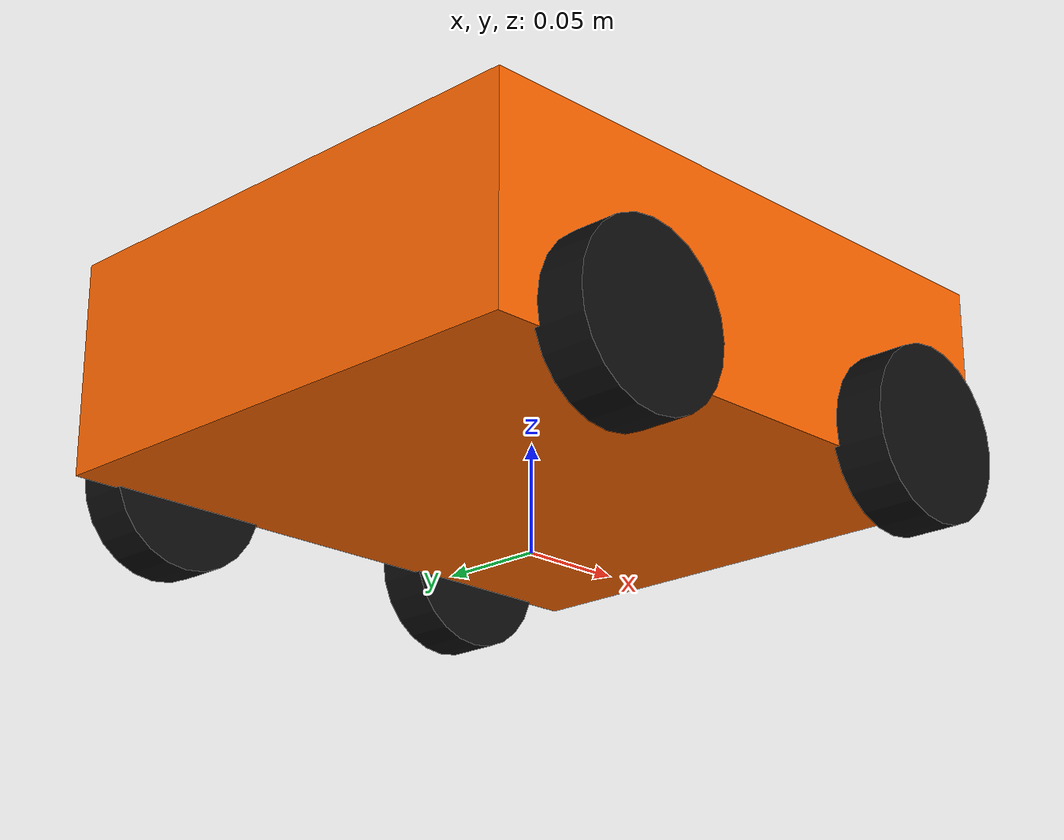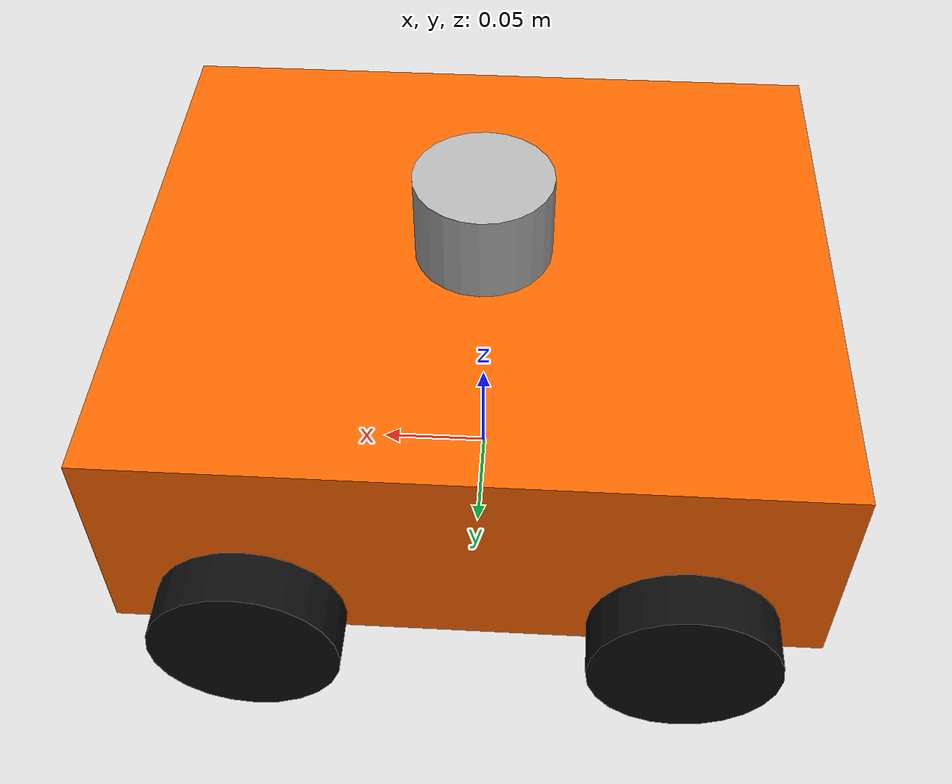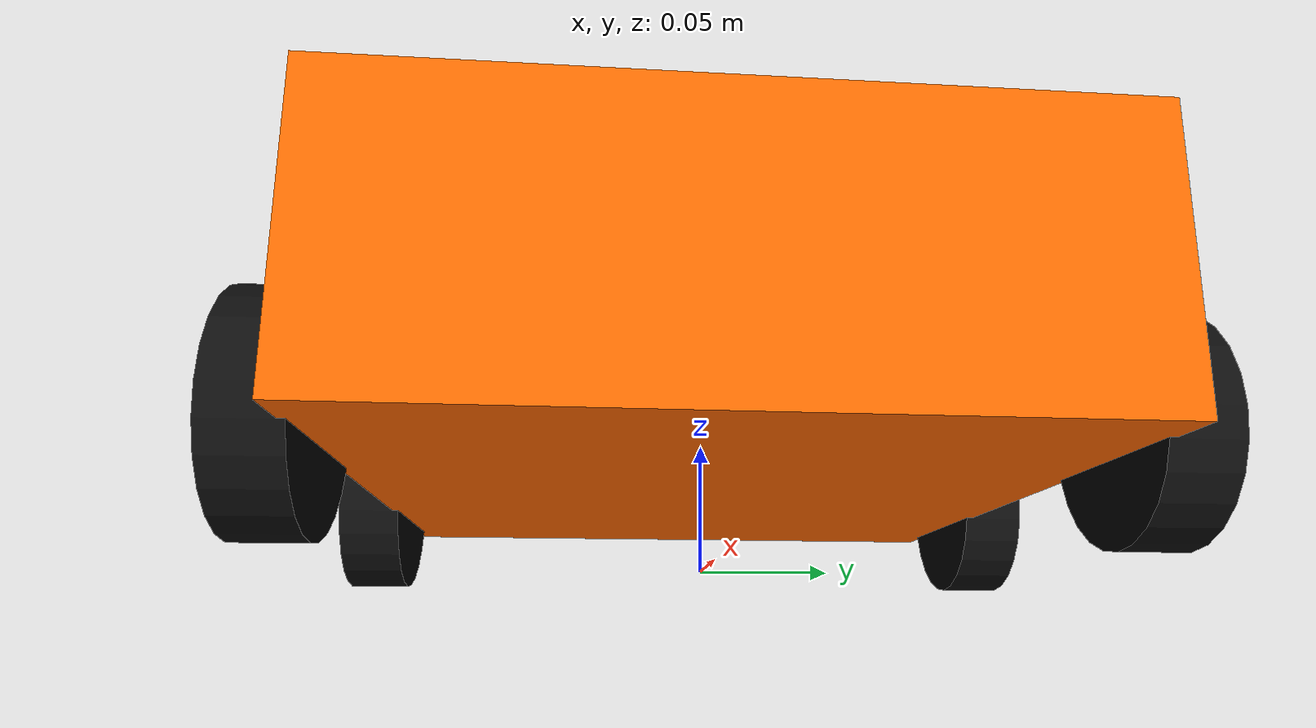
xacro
<?xml version="1.0"?>
<robot name="diff_robot" xmlns:xacro="http://www.ros.org/wiki/xacro">

  <xacro:property name="body_length" value="0.30"/>
  <xacro:property name="body_width"  value="0.26"/>
  <xacro:property name="body_height" value="0.10"/>
  <xacro:property name="base_z"      value="0.08"/>

  <xacro:property name="wheel_radius" value="0.04"/>
  <xacro:property name="wheel_width"  value="0.025"/>
  <xacro:property name="wheel_x"      value="0.09"/>
  <xacro:property name="wheel_y"      value="0.14"/>

  <xacro:property name="lidar_radius" value="0.03"/>
  <xacro:property name="lidar_height" value="0.04"/>

  <material name="orange"><color rgba="1.0 0.4 0.0 1.0"/></material>
  <material name="black"><color rgba="0.05 0.05 0.05 1.0"/></material>
  <material name="grey"><color rgba="0.7 0.7 0.7 1.0"/></material>

  <link name="base_footprint"/>

  <joint name="base_joint" type="fixed">
    <parent link="base_footprint"/>
    <child link="base_link"/>
    <origin xyz="0 0 ${base_z}" rpy="0 0 0"/>
  </joint>

  <link name="base_link">
    <visual>
      <geometry>
        <box size="${body_length} ${body_width} ${body_height}"/>
      </geometry>
      <material name="orange"/>
    </visual>
    <collision>
      <geometry>
        <box size="${body_length} ${body_width} ${body_height}"/>
      </geometry>
    </collision>
    <inertial>
      <mass value="2.0"/>
      <inertia
        ixx="${2.0*(body_height*body_height+body_width*body_width)/12.0}" ixy="0.0" ixz="0.0"
        iyy="${2.0*(body_height*body_height+body_length*body_length)/12.0}" iyz="0.0"
        izz="${2.0*(body_length*body_length+body_width*body_width)/12.0}"/>
    </inertial>
  </link>

  <joint name="lidar_joint" type="fixed">
    <parent link="base_link"/>
    <child link="lidar_link"/>
    <origin xyz="0 0 ${body_height/2 + lidar_height/2}" rpy="0 0 0"/>
  </joint>

  <link name="lidar_link">
    <visual>
      <geometry>
        <cylinder radius="${lidar_radius}" length="${lidar_height}"/>
      </geometry>
      <material name="grey"/>
    </visual>
    <collision>
      <geometry>
        <cylinder radius="${lidar_radius}" length="${lidar_height}"/>
      </geometry>
    </collision>
    <inertial>
      <mass value="0.05"/>
      <inertia
        ixx="${0.05*(3*lidar_radius*lidar_radius+lidar_height*lidar_height)/12.0}" ixy="0.0" ixz="0.0"
        iyy="${0.5*0.05*lidar_radius*lidar_radius}" iyz="0.0"
        izz="${0.05*(3*lidar_radius*lidar_radius+lidar_height*lidar_height)/12.0}"/>
    </inertial>
  </link>

  <xacro:macro name="wheel" params="name x y">
    <link name="${name}_link">
      <visual>
        <origin rpy="${pi/2} 0 0"/>
        <geometry>
          <cylinder radius="${wheel_radius}" length="${wheel_width}"/>
        </geometry>
        <material name="black"/>
      </visual>
      <collision>
        <geometry>
          <sphere radius="${wheel_radius}"/>
        </geometry>
      </collision>
      <inertial>
        <mass value="0.1"/>
        <inertia
          ixx="${0.1*(3*wheel_radius*wheel_radius+wheel_width*wheel_width)/12.0}" ixy="0.0" ixz="0.0"
          iyy="${0.5*0.1*wheel_radius*wheel_radius}" iyz="0.0"
          izz="${0.1*(3*wheel_radius*wheel_radius+wheel_width*wheel_width)/12.0}"/>
      </inertial>
    </link>
    <joint name="${name}_joint" type="continuous">
      <parent link="base_link"/>
      <child link="${name}_link"/>
      <origin xyz="${x} ${y} ${wheel_radius - base_z}" rpy="0 0 0"/>
      <axis xyz="0 1 0"/>
      <dynamics damping="0.01" friction="0.0"/>
    </joint>
  </xacro:macro>

  <xacro:wheel name="left_wheel"       x="${wheel_x}"  y="${wheel_y}"/>
  <xacro:wheel name="right_wheel"      x="${wheel_x}"  y="-${wheel_y}"/>
  <xacro:wheel name="left_rear_wheel"  x="-${wheel_x}" y="${wheel_y}"/>
  <xacro:wheel name="right_rear_wheel" x="-${wheel_x}" y="-${wheel_y}"/>

  <gazebo reference="base_link">
    <material>Gazebo/Orange</material>
  </gazebo>

  <gazebo reference="lidar_link">
    <material>Gazebo/Grey</material>
    <sensor type="ray" name="lidar_sensor">
      <pose>0 0 0 0 0 0</pose>
      <update_rate>10</update_rate>
      <visualize>false</visualize>
      <ray>
        <scan>
          <horizontal>
            <samples>240</samples>
            <resolution>1</resolution>
            <min_angle>-${pi}</min_angle>
            <max_angle>${pi}</max_angle>
          </horizontal>
        </scan>
        <range>
          <min>0.12</min>
          <max>8.0</max>
          <resolution>0.015</resolution>
        </range>
        <noise>
          <type>gaussian</type>
          <mean>0.0</mean>
          <stddev>0.01</stddev>
        </noise>
      </ray>
      <plugin name="lidar_controller" filename="libgazebo_ros_ray_sensor.so">
        <ros>
          <remapping>~/out:=scan</remapping>
        </ros>
        <output_type>sensor_msgs/LaserScan</output_type>
        <radiation_type>ultrasound</radiation_type>
        <frame_name>lidar_link</frame_name>
      </plugin>
    </sensor>
  </gazebo>

  <gazebo reference="left_wheel_link">
    <material>Gazebo/Black</material>
    <mu1>1.0</mu1>
    <mu2>1.0</mu2>
  </gazebo>

  <gazebo reference="right_wheel_link">
    <material>Gazebo/Black</material>
    <mu1>1.0</mu1>
    <mu2>1.0</mu2>
  </gazebo>

  <gazebo reference="left_rear_wheel_link">
    <material>Gazebo/Black</material>
    <mu1>1.0</mu1>
    <mu2>1.0</mu2>
  </gazebo>

  <gazebo reference="right_rear_wheel_link">
    <material>Gazebo/Black</material>
    <mu1>1.0</mu1>
    <mu2>1.0</mu2>
  </gazebo>

  <gazebo>
    <plugin name="diff_drive" filename="libgazebo_ros_diff_drive.so">
      <ros>
        <remapping>cmd_vel:=cmd_vel</remapping>
        <remapping>odom:=odom</remapping>
      </ros>
      <update_rate>50</update_rate>
      <left_joint>left_wheel_joint</left_joint>
      <right_joint>right_wheel_joint</right_joint>
      <wheel_separation>${2*wheel_y}</wheel_separation>
      <wheel_diameter>${2*wheel_radius}</wheel_diameter>
      <max_wheel_torque>5.0</max_wheel_torque>
      <max_wheel_acceleration>10.0</max_wheel_acceleration>
      <publish_odom>true</publish_odom>
      <publish_odom_tf>true</publish_odom_tf>
      <publish_wheel_tf>false</publish_wheel_tf>
      <odometry_frame>odom</odometry_frame>
      <robot_base_frame>base_footprint</robot_base_frame>
    </plugin>

    <plugin name="diff_drive_rear" filename="libgazebo_ros_diff_drive.so">
      <ros>
        <namespace>/rear</namespace>
        <remapping>cmd_vel:=/cmd_vel</remapping>
        <remapping>odom:=odom</remapping>
      </ros>
      <update_rate>50</update_rate>
      <left_joint>left_rear_wheel_joint</left_joint>
      <right_joint>right_rear_wheel_joint</right_joint>
      <wheel_separation>${2*wheel_y}</wheel_separation>
      <wheel_diameter>${2*wheel_radius}</wheel_diameter>
      <max_wheel_torque>5.0</max_wheel_torque>
      <max_wheel_acceleration>10.0</max_wheel_acceleration>
      <publish_odom>false</publish_odom>
      <publish_odom_tf>false</publish_odom_tf>
      <publish_wheel_tf>false</publish_wheel_tf>
      <odometry_frame>odom</odometry_frame>
      <robot_base_frame>base_footprint</robot_base_frame>
    </plugin>

    <plugin name="joint_state_publisher" filename="libgazebo_ros_joint_state_publisher.so">
      <update_rate>30</update_rate>
      <joint_name>left_wheel_joint</joint_name>
      <joint_name>right_wheel_joint</joint_name>
      <joint_name>left_rear_wheel_joint</joint_name>
      <joint_name>right_rear_wheel_joint</joint_name>
    </plugin>
  </gazebo>

</robot>
